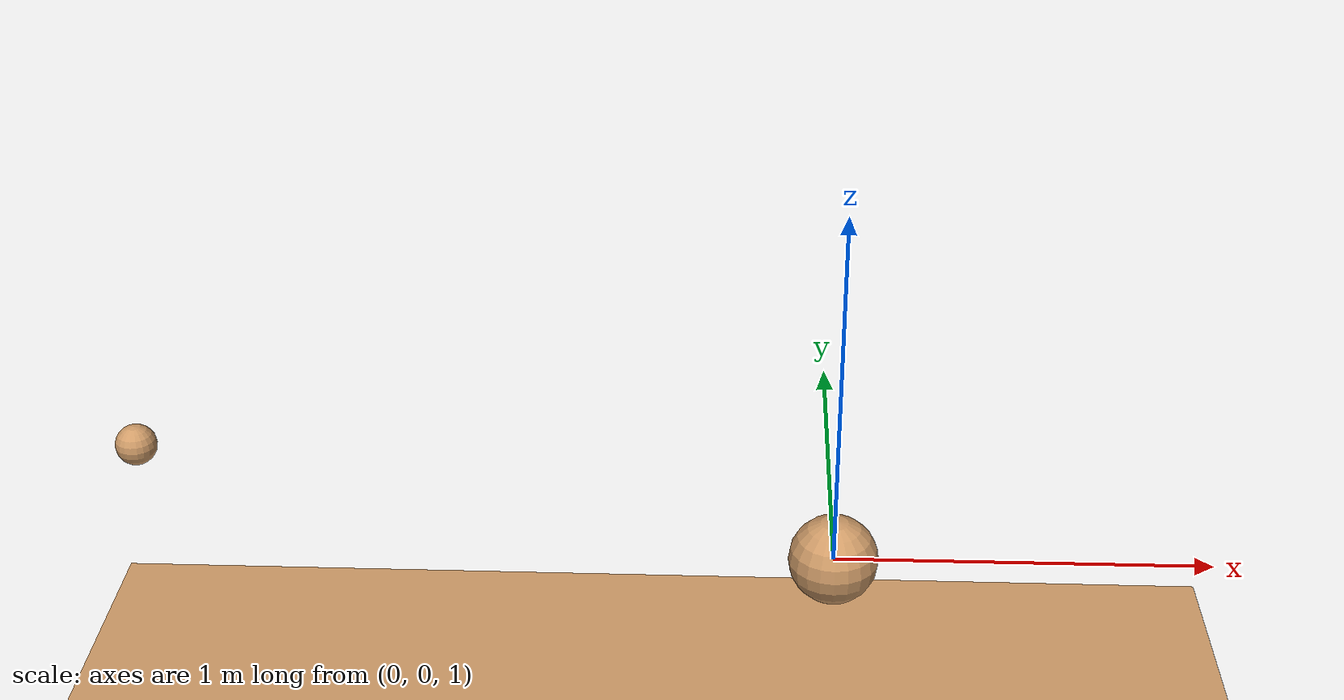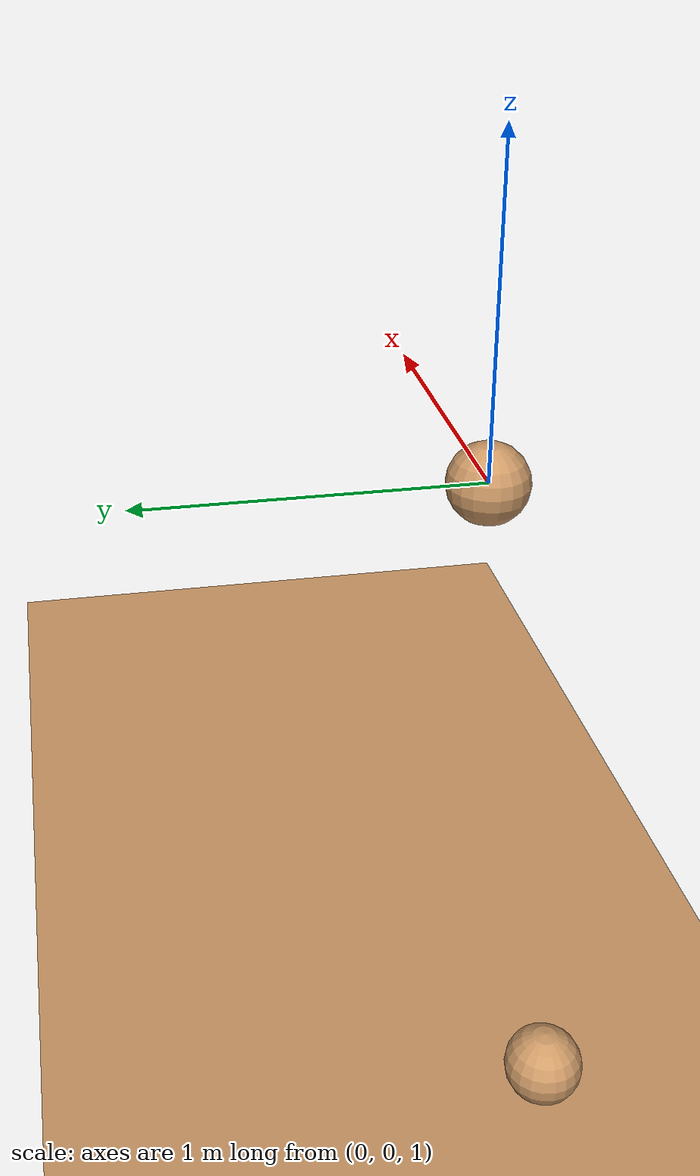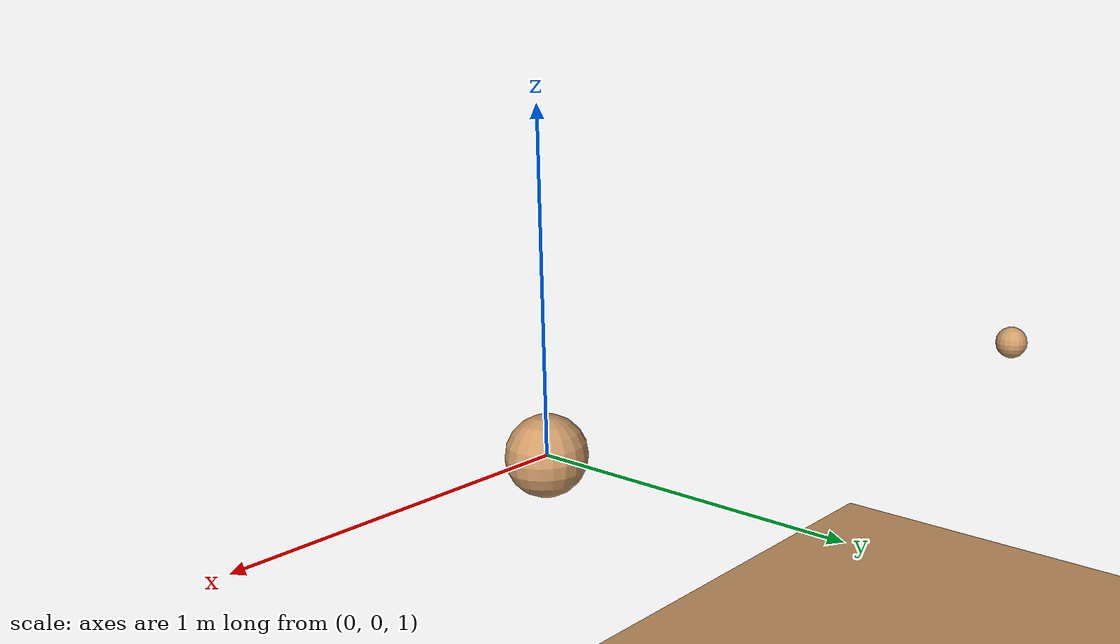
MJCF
<mujoco model="example">
  <compiler coordinate="global"/>

  <default>
    <geom rgba=".8 .6 .4 1"/>
  </default>

  <asset>
    <texture type="skybox" builtin="gradient" rgb1="1 1 1" rgb2=".6 .8 1" width="256" height="256"/>
    <texture name="texplane" type="2d" builtin="checker" rgb1=".25 .25 .25" rgb2=".3 .3 .3" width="512" height="512" mark="cross" markrgb=".8 .8 .8"/>
    <material name="matplane" reflectance="0.2" texture="texplane" texrepeat="1 1" texuniform="true"/>
  </asset>

  <worldbody>
    <light pos="0 1 1" dir="0 -1 -1" diffuse="3 3 3"/>
    <geom name="floor" pos="0 0 -0.0" size="0 0 1" type="plane" material="matplane"/>
    <body>
      <geom type="sphere" pos="0 0 1" size="0.12" solref="0.0001 0"/>
      <geom type="sphere" pos="-2 0.5 1" size="0.06" solref="-10000 -7"/>
      <joint type="free" pos="0 0 1"/>
    </body>
  </worldbody>

</mujoco>
